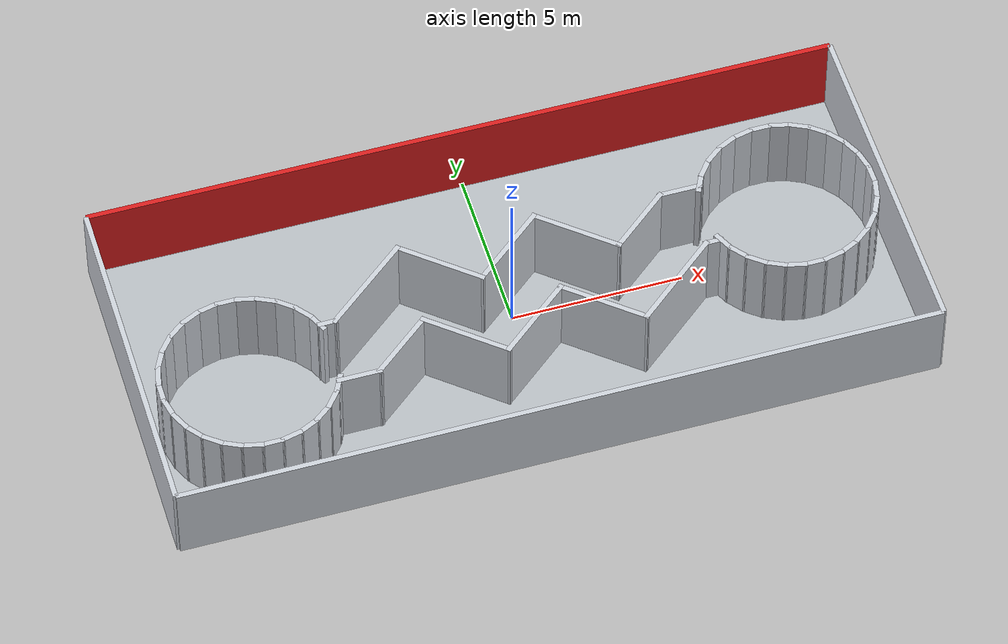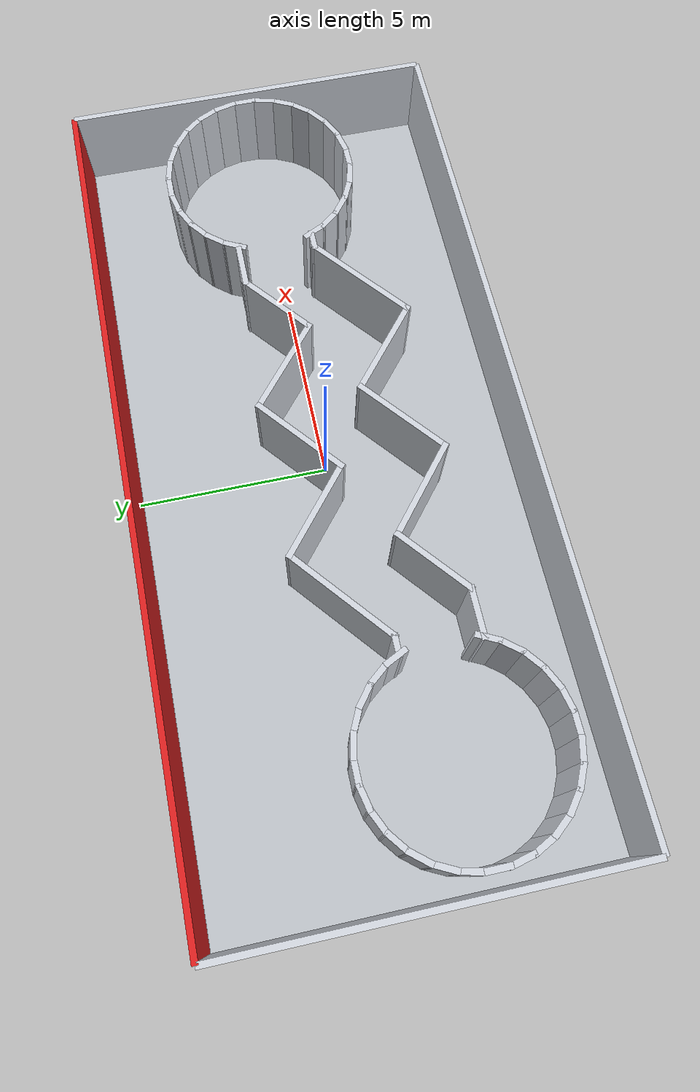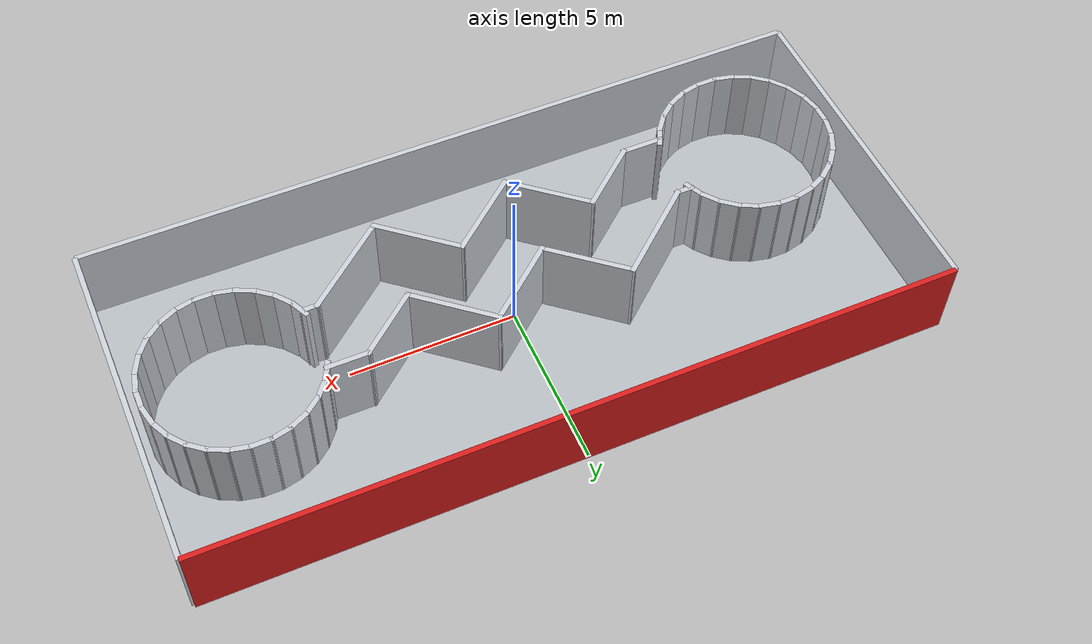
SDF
<sdf version="1.9">
 <world name="crashtest_zigzag">
  <physics name="1ms" type="ignored">
   <max_step_size>0.001</max_step_size>
   <real_time_factor>1.0</real_time_factor>
  </physics>
  <plugin filename="gz-sim-physics-system" name="gz::sim::systems::Physics"/>
  <plugin filename="gz-sim-scene-broadcaster-system" name="gz::sim::systems::SceneBroadcaster"/>
  <plugin filename="gz-sim-user-commands-system" name="gz::sim::systems::UserCommands"/>
  <plugin filename="gz-sim-sensors-system" name="gz::sim::systems::Sensors">
   <render_engine>ogre2</render_engine>
  </plugin>
  <plugin filename="gz-sim-imu-system" name="gz::sim::systems::Imu"/>
  <plugin filename="gz-sim-navsat-system" name="gz::sim::systems::NavSat"/>
  <spherical_coordinates>
   <latitude_deg>-35.363262</latitude_deg>
   <longitude_deg>149.165237</longitude_deg>
   <elevation>584.0</elevation>
   <heading_deg>0</heading_deg>
   <surface_model>EARTH_WGS84</surface_model>
  </spherical_coordinates>
  <light type="directional" name="main_light">
   <cast_shadows>false</cast_shadows>
   <pose>0 0 10 0 0 0</pose>
   <diffuse>1.0 1.0 1.0 1</diffuse>
   <specular>0.5 0.5 0.5 1</specular>
   <direction>0.1 0.1 -1</direction>
  </light>
  <model name="floor">
   <static>true</static>
   <link name="link">
    <collision name="c"><geometry><box><size>22.0 10.0 0.05</size></box></geometry></collision>
    <visual name="v">
     <geometry><box><size>22.0 10.0 0.05</size></box></geometry>
     <material>
      <ambient>0.72 0.74 0.76 1</ambient>
      <diffuse>0.72 0.74 0.76 1</diffuse>
      <specular>0.1 0.1 0.1 1</specular>
     </material>
    </visual>
   </link>
  </model>
  <model name="outer_south">
   <static>true</static>
   <pose>0.0000 -5.0000 1.250 0 0 0.00000</pose>
   <link name="link">
    <collision name="c"><geometry><box><size>22.0000 0.1500 2.500</size></box></geometry></collision>
    <visual name="v">
     <geometry><box><size>22.0000 0.1500 2.500</size></box></geometry>
     <material>
      <ambient>0.8 0.82 0.85 1</ambient>
      <diffuse>0.8 0.82 0.85 1</diffuse>
      <specular>0.1 0.1 0.1 1</specular>
     </material>
    </visual>
   </link>
  </model>
  <model name="outer_north">
   <static>true</static>
   <pose>0.0000 5.0000 1.250 0 0 0.00000</pose>
   <link name="link">
    <collision name="c"><geometry><box><size>22.0000 0.1500 2.500</size></box></geometry></collision>
    <visual name="v">
     <geometry><box><size>22.0000 0.1500 2.500</size></box></geometry>
     <material>
      <ambient>0.85 0.12 0.12 1</ambient>
      <diffuse>0.85 0.12 0.12 1</diffuse>
      <specular>0.1 0.1 0.1 1</specular>
     </material>
    </visual>
   </link>
  </model>
  <model name="outer_west">
   <static>true</static>
   <pose>-11.0000 0.0000 1.250 0 0 0.00000</pose>
   <link name="link">
    <collision name="c"><geometry><box><size>0.1500 10.0000 2.500</size></box></geometry></collision>
    <visual name="v">
     <geometry><box><size>0.1500 10.0000 2.500</size></box></geometry>
     <material>
      <ambient>0.8 0.82 0.85 1</ambient>
      <diffuse>0.8 0.82 0.85 1</diffuse>
      <specular>0.1 0.1 0.1 1</specular>
     </material>
    </visual>
   </link>
  </model>
  <model name="outer_east">
   <static>true</static>
   <pose>11.0000 0.0000 1.250 0 0 0.00000</pose>
   <link name="link">
    <collision name="c"><geometry><box><size>0.1500 10.0000 2.500</size></box></geometry></collision>
    <visual name="v">
     <geometry><box><size>0.1500 10.0000 2.500</size></box></geometry>
     <material>
      <ambient>0.8 0.82 0.85 1</ambient>
      <diffuse>0.8 0.82 0.85 1</diffuse>
      <specular>0.1 0.1 0.1 1</specular>
     </material>
    </visual>
   </link>
  </model>
  <model name="zz0_L">
   <static>true</static>
   <pose>-5.4907 -0.5000 1.250 0 0 0.00000</pose>
   <link name="link">
    <collision name="c"><geometry><box><size>0.5860 0.1500 2.500</size></box></geometry></collision>
    <visual name="v">
     <geometry><box><size>0.5860 0.1500 2.500</size></box></geometry>
     <material>
      <ambient>0.8 0.82 0.85 1</ambient>
      <diffuse>0.8 0.82 0.85 1</diffuse>
      <specular>0.1 0.1 0.1 1</specular>
     </material>
    </visual>
   </link>
  </model>
  <model name="zz1_L">
   <static>true</static>
   <pose>-4.0949 0.4883 1.250 0 0 0.69813</pose>
   <link name="link">
    <collision name="c"><geometry><box><size>3.2251 0.1500 2.500</size></box></geometry></collision>
    <visual name="v">
     <geometry><box><size>3.2251 0.1500 2.500</size></box></geometry>
     <material>
      <ambient>0.8 0.82 0.85 1</ambient>
      <diffuse>0.8 0.82 0.85 1</diffuse>
      <specular>0.1 0.1 0.1 1</specular>
     </material>
    </visual>
   </link>
  </model>
  <model name="zz2_L">
   <static>true</static>
   <pose>-1.9212 0.6410 1.250 0 0 -0.69813</pose>
   <link name="link">
    <collision name="c"><geometry><box><size>2.7500 0.1500 2.500</size></box></geometry></collision>
    <visual name="v">
     <geometry><box><size>2.7500 0.1500 2.500</size></box></geometry>
     <material>
      <ambient>0.8 0.82 0.85 1</ambient>
      <diffuse>0.8 0.82 0.85 1</diffuse>
      <specular>0.1 0.1 0.1 1</specular>
     </material>
    </visual>
   </link>
  </model>
  <model name="zz3_L">
   <static>true</static>
   <pose>0.0705 0.6410 1.250 0 0 0.69813</pose>
   <link name="link">
    <collision name="c"><geometry><box><size>2.7500 0.1500 2.500</size></box></geometry></collision>
    <visual name="v">
     <geometry><box><size>2.7500 0.1500 2.500</size></box></geometry>
     <material>
      <ambient>0.8 0.82 0.85 1</ambient>
      <diffuse>0.8 0.82 0.85 1</diffuse>
      <specular>0.1 0.1 0.1 1</specular>
     </material>
    </visual>
   </link>
  </model>
  <model name="zz4_L">
   <static>true</static>
   <pose>2.0623 0.6410 1.250 0 0 -0.69813</pose>
   <link name="link">
    <collision name="c"><geometry><box><size>2.7500 0.1500 2.500</size></box></geometry></collision>
    <visual name="v">
     <geometry><box><size>2.7500 0.1500 2.500</size></box></geometry>
     <material>
      <ambient>0.8 0.82 0.85 1</ambient>
      <diffuse>0.8 0.82 0.85 1</diffuse>
      <specular>0.1 0.1 0.1 1</specular>
     </material>
    </visual>
   </link>
  </model>
  <model name="zz5_L">
   <static>true</static>
   <pose>3.8720 0.4883 1.250 0 0 0.69813</pose>
   <link name="link">
    <collision name="c"><geometry><box><size>2.2749 0.1500 2.500</size></box></geometry></collision>
    <visual name="v">
     <geometry><box><size>2.2749 0.1500 2.500</size></box></geometry>
     <material>
      <ambient>0.8 0.82 0.85 1</ambient>
      <diffuse>0.8 0.82 0.85 1</diffuse>
      <specular>0.1 0.1 0.1 1</specular>
     </material>
    </visual>
   </link>
  </model>
  <model name="zz6_L">
   <static>true</static>
   <pose>5.2678 1.1712 1.250 0 0 0.00000</pose>
   <link name="link">
    <collision name="c"><geometry><box><size>1.3140 0.1500 2.500</size></box></geometry></collision>
    <visual name="v">
     <geometry><box><size>1.3140 0.1500 2.500</size></box></geometry>
     <material>
      <ambient>0.8 0.82 0.85 1</ambient>
      <diffuse>0.8 0.82 0.85 1</diffuse>
      <specular>0.1 0.1 0.1 1</specular>
     </material>
    </visual>
   </link>
  </model>
  <model name="zz0_R">
   <static>true</static>
   <pose>-5.1268 -2.5000 1.250 0 0 0.00000</pose>
   <link name="link">
    <collision name="c"><geometry><box><size>1.3140 0.1500 2.500</size></box></geometry></collision>
    <visual name="v">
     <geometry><box><size>1.3140 0.1500 2.500</size></box></geometry>
     <material>
      <ambient>0.8 0.82 0.85 1</ambient>
      <diffuse>0.8 0.82 0.85 1</diffuse>
      <specular>0.1 0.1 0.1 1</specular>
     </material>
    </visual>
   </link>
  </model>
  <model name="zz1_R">
   <static>true</static>
   <pose>-3.7309 -1.8171 1.250 0 0 0.69813</pose>
   <link name="link">
    <collision name="c"><geometry><box><size>2.2749 0.1500 2.500</size></box></geometry></collision>
    <visual name="v">
     <geometry><box><size>2.2749 0.1500 2.500</size></box></geometry>
     <material>
      <ambient>0.8 0.82 0.85 1</ambient>
      <diffuse>0.8 0.82 0.85 1</diffuse>
      <specular>0.1 0.1 0.1 1</specular>
     </material>
    </visual>
   </link>
  </model>
  <model name="zz2_R">
   <static>true</static>
   <pose>-1.9212 -1.9698 1.250 0 0 -0.69813</pose>
   <link name="link">
    <collision name="c"><geometry><box><size>2.7500 0.1500 2.500</size></box></geometry></collision>
    <visual name="v">
     <geometry><box><size>2.7500 0.1500 2.500</size></box></geometry>
     <material>
      <ambient>0.8 0.82 0.85 1</ambient>
      <diffuse>0.8 0.82 0.85 1</diffuse>
      <specular>0.1 0.1 0.1 1</specular>
     </material>
    </visual>
   </link>
  </model>
  <model name="zz3_R">
   <static>true</static>
   <pose>0.0705 -1.9698 1.250 0 0 0.69813</pose>
   <link name="link">
    <collision name="c"><geometry><box><size>2.7500 0.1500 2.500</size></box></geometry></collision>
    <visual name="v">
     <geometry><box><size>2.7500 0.1500 2.500</size></box></geometry>
     <material>
      <ambient>0.8 0.82 0.85 1</ambient>
      <diffuse>0.8 0.82 0.85 1</diffuse>
      <specular>0.1 0.1 0.1 1</specular>
     </material>
    </visual>
   </link>
  </model>
  <model name="zz4_R">
   <static>true</static>
   <pose>2.0623 -1.9698 1.250 0 0 -0.69813</pose>
   <link name="link">
    <collision name="c"><geometry><box><size>2.7500 0.1500 2.500</size></box></geometry></collision>
    <visual name="v">
     <geometry><box><size>2.7500 0.1500 2.500</size></box></geometry>
     <material>
      <ambient>0.8 0.82 0.85 1</ambient>
      <diffuse>0.8 0.82 0.85 1</diffuse>
      <specular>0.1 0.1 0.1 1</specular>
     </material>
    </visual>
   </link>
  </model>
  <model name="zz5_R">
   <static>true</static>
   <pose>4.2360 -1.8171 1.250 0 0 0.69813</pose>
   <link name="link">
    <collision name="c"><geometry><box><size>3.2251 0.1500 2.500</size></box></geometry></collision>
    <visual name="v">
     <geometry><box><size>3.2251 0.1500 2.500</size></box></geometry>
     <material>
      <ambient>0.8 0.82 0.85 1</ambient>
      <diffuse>0.8 0.82 0.85 1</diffuse>
      <specular>0.1 0.1 0.1 1</specular>
     </material>
    </visual>
   </link>
  </model>
  <model name="zz6_R">
   <static>true</static>
   <pose>5.6318 -0.8288 1.250 0 0 0.00000</pose>
   <link name="link">
    <collision name="c"><geometry><box><size>0.5860 0.1500 2.500</size></box></geometry></collision>
    <visual name="v">
     <geometry><box><size>0.5860 0.1500 2.500</size></box></geometry>
     <material>
      <ambient>0.8 0.82 0.85 1</ambient>
      <diffuse>0.8 0.82 0.85 1</diffuse>
      <specular>0.1 0.1 0.1 1</specular>
     </material>
    </visual>
   </link>
  </model>
  <model name="roomA_s2">
   <static>true</static>
   <pose>-5.7476 -0.4153 1.250 0 0 0.44880</pose>
   <link name="link">
    <collision name="c"><geometry><box><size>0.1500 0.6451 2.500</size></box></geometry></collision>
    <visual name="v">
     <geometry><box><size>0.1500 0.6451 2.500</size></box></geometry>
     <material>
      <ambient>0.8 0.82 0.85 1</ambient>
      <diffuse>0.8 0.82 0.85 1</diffuse>
      <specular>0.1 0.1 0.1 1</specular>
     </material>
    </visual>
   </link>
  </model>
  <model name="roomA_s3">
   <static>true</static>
   <pose>-6.0454 0.0587 1.250 0 0 0.67320</pose>
   <link name="link">
    <collision name="c"><geometry><box><size>0.1500 0.6451 2.500</size></box></geometry></collision>
    <visual name="v">
     <geometry><box><size>0.1500 0.6451 2.500</size></box></geometry>
     <material>
      <ambient>0.8 0.82 0.85 1</ambient>
      <diffuse>0.8 0.82 0.85 1</diffuse>
      <specular>0.1 0.1 0.1 1</specular>
     </material>
    </visual>
   </link>
  </model>
  <model name="roomA_s4">
   <static>true</static>
   <pose>-6.4413 0.4546 1.250 0 0 0.89760</pose>
   <link name="link">
    <collision name="c"><geometry><box><size>0.1500 0.6451 2.500</size></box></geometry></collision>
    <visual name="v">
     <geometry><box><size>0.1500 0.6451 2.500</size></box></geometry>
     <material>
      <ambient>0.8 0.82 0.85 1</ambient>
      <diffuse>0.8 0.82 0.85 1</diffuse>
      <specular>0.1 0.1 0.1 1</specular>
     </material>
    </visual>
   </link>
  </model>
  <model name="roomA_s5">
   <static>true</static>
   <pose>-6.9153 0.7524 1.250 0 0 1.12200</pose>
   <link name="link">
    <collision name="c"><geometry><box><size>0.1500 0.6451 2.500</size></box></geometry></collision>
    <visual name="v">
     <geometry><box><size>0.1500 0.6451 2.500</size></box></geometry>
     <material>
      <ambient>0.8 0.82 0.85 1</ambient>
      <diffuse>0.8 0.82 0.85 1</diffuse>
      <specular>0.1 0.1 0.1 1</specular>
     </material>
    </visual>
   </link>
  </model>
  <model name="roomA_s6">
   <static>true</static>
   <pose>-7.4437 0.9373 1.250 0 0 1.34640</pose>
   <link name="link">
    <collision name="c"><geometry><box><size>0.1500 0.6451 2.500</size></box></geometry></collision>
    <visual name="v">
     <geometry><box><size>0.1500 0.6451 2.500</size></box></geometry>
     <material>
      <ambient>0.8 0.82 0.85 1</ambient>
      <diffuse>0.8 0.82 0.85 1</diffuse>
      <specular>0.1 0.1 0.1 1</specular>
     </material>
    </visual>
   </link>
  </model>
  <model name="roomA_s7">
   <static>true</static>
   <pose>-8.0000 1.0000 1.250 0 0 1.57080</pose>
   <link name="link">
    <collision name="c"><geometry><box><size>0.1500 0.6451 2.500</size></box></geometry></collision>
    <visual name="v">
     <geometry><box><size>0.1500 0.6451 2.500</size></box></geometry>
     <material>
      <ambient>0.8 0.82 0.85 1</ambient>
      <diffuse>0.8 0.82 0.85 1</diffuse>
      <specular>0.1 0.1 0.1 1</specular>
     </material>
    </visual>
   </link>
  </model>
  <model name="roomA_s8">
   <static>true</static>
   <pose>-8.5563 0.9373 1.250 0 0 1.79520</pose>
   <link name="link">
    <collision name="c"><geometry><box><size>0.1500 0.6451 2.500</size></box></geometry></collision>
    <visual name="v">
     <geometry><box><size>0.1500 0.6451 2.500</size></box></geometry>
     <material>
      <ambient>0.8 0.82 0.85 1</ambient>
      <diffuse>0.8 0.82 0.85 1</diffuse>
      <specular>0.1 0.1 0.1 1</specular>
     </material>
    </visual>
   </link>
  </model>
  <model name="roomA_s9">
   <static>true</static>
   <pose>-9.0847 0.7524 1.250 0 0 2.01960</pose>
   <link name="link">
    <collision name="c"><geometry><box><size>0.1500 0.6451 2.500</size></box></geometry></collision>
    <visual name="v">
     <geometry><box><size>0.1500 0.6451 2.500</size></box></geometry>
     <material>
      <ambient>0.8 0.82 0.85 1</ambient>
      <diffuse>0.8 0.82 0.85 1</diffuse>
      <specular>0.1 0.1 0.1 1</specular>
     </material>
    </visual>
   </link>
  </model>
  <model name="roomA_s10">
   <static>true</static>
   <pose>-9.5587 0.4546 1.250 0 0 2.24399</pose>
   <link name="link">
    <collision name="c"><geometry><box><size>0.1500 0.6451 2.500</size></box></geometry></collision>
    <visual name="v">
     <geometry><box><size>0.1500 0.6451 2.500</size></box></geometry>
     <material>
      <ambient>0.8 0.82 0.85 1</ambient>
      <diffuse>0.8 0.82 0.85 1</diffuse>
      <specular>0.1 0.1 0.1 1</specular>
     </material>
    </visual>
   </link>
  </model>
  <model name="roomA_s11">
   <static>true</static>
   <pose>-9.9546 0.0587 1.250 0 0 2.46839</pose>
   <link name="link">
    <collision name="c"><geometry><box><size>0.1500 0.6451 2.500</size></box></geometry></collision>
    <visual name="v">
     <geometry><box><size>0.1500 0.6451 2.500</size></box></geometry>
     <material>
      <ambient>0.8 0.82 0.85 1</ambient>
      <diffuse>0.8 0.82 0.85 1</diffuse>
      <specular>0.1 0.1 0.1 1</specular>
     </material>
    </visual>
   </link>
  </model>
  <model name="roomA_s12">
   <static>true</static>
   <pose>-10.2524 -0.4153 1.250 0 0 2.69279</pose>
   <link name="link">
    <collision name="c"><geometry><box><size>0.1500 0.6451 2.500</size></box></geometry></collision>
    <visual name="v">
     <geometry><box><size>0.1500 0.6451 2.500</size></box></geometry>
     <material>
      <ambient>0.8 0.82 0.85 1</ambient>
      <diffuse>0.8 0.82 0.85 1</diffuse>
      <specular>0.1 0.1 0.1 1</specular>
     </material>
    </visual>
   </link>
  </model>
  <model name="roomA_s13">
   <static>true</static>
   <pose>-10.4373 -0.9437 1.250 0 0 2.91719</pose>
   <link name="link">
    <collision name="c"><geometry><box><size>0.1500 0.6451 2.500</size></box></geometry></collision>
    <visual name="v">
     <geometry><box><size>0.1500 0.6451 2.500</size></box></geometry>
     <material>
      <ambient>0.8 0.82 0.85 1</ambient>
      <diffuse>0.8 0.82 0.85 1</diffuse>
      <specular>0.1 0.1 0.1 1</specular>
     </material>
    </visual>
   </link>
  </model>
  <model name="roomA_s14">
   <static>true</static>
   <pose>-10.5000 -1.5000 1.250 0 0 3.14159</pose>
   <link name="link">
    <collision name="c"><geometry><box><size>0.1500 0.6451 2.500</size></box></geometry></collision>
    <visual name="v">
     <geometry><box><size>0.1500 0.6451 2.500</size></box></geometry>
     <material>
      <ambient>0.8 0.82 0.85 1</ambient>
      <diffuse>0.8 0.82 0.85 1</diffuse>
      <specular>0.1 0.1 0.1 1</specular>
     </material>
    </visual>
   </link>
  </model>
  <model name="roomA_s15">
   <static>true</static>
   <pose>-10.4373 -2.0563 1.250 0 0 3.36599</pose>
   <link name="link">
    <collision name="c"><geometry><box><size>0.1500 0.6451 2.500</size></box></geometry></collision>
    <visual name="v">
     <geometry><box><size>0.1500 0.6451 2.500</size></box></geometry>
     <material>
      <ambient>0.8 0.82 0.85 1</ambient>
      <diffuse>0.8 0.82 0.85 1</diffuse>
      <specular>0.1 0.1 0.1 1</specular>
     </material>
    </visual>
   </link>
  </model>
  <model name="roomA_s16">
   <static>true</static>
   <pose>-10.2524 -2.5847 1.250 0 0 3.59039</pose>
   <link name="link">
    <collision name="c"><geometry><box><size>0.1500 0.6451 2.500</size></box></geometry></collision>
    <visual name="v">
     <geometry><box><size>0.1500 0.6451 2.500</size></box></geometry>
     <material>
      <ambient>0.8 0.82 0.85 1</ambient>
      <diffuse>0.8 0.82 0.85 1</diffuse>
      <specular>0.1 0.1 0.1 1</specular>
     </material>
    </visual>
   </link>
  </model>
  <model name="roomA_s17">
   <static>true</static>
   <pose>-9.9546 -3.0587 1.250 0 0 3.81479</pose>
   <link name="link">
    <collision name="c"><geometry><box><size>0.1500 0.6451 2.500</size></box></geometry></collision>
    <visual name="v">
     <geometry><box><size>0.1500 0.6451 2.500</size></box></geometry>
     <material>
      <ambient>0.8 0.82 0.85 1</ambient>
      <diffuse>0.8 0.82 0.85 1</diffuse>
      <specular>0.1 0.1 0.1 1</specular>
     </material>
    </visual>
   </link>
  </model>
  <model name="roomA_s18">
   <static>true</static>
   <pose>-9.5587 -3.4546 1.250 0 0 4.03919</pose>
   <link name="link">
    <collision name="c"><geometry><box><size>0.1500 0.6451 2.500</size></box></geometry></collision>
    <visual name="v">
     <geometry><box><size>0.1500 0.6451 2.500</size></box></geometry>
     <material>
      <ambient>0.8 0.82 0.85 1</ambient>
      <diffuse>0.8 0.82 0.85 1</diffuse>
      <specular>0.1 0.1 0.1 1</specular>
     </material>
    </visual>
   </link>
  </model>
  <model name="roomA_s19">
   <static>true</static>
   <pose>-9.0847 -3.7524 1.250 0 0 4.26359</pose>
   <link name="link">
    <collision name="c"><geometry><box><size>0.1500 0.6451 2.500</size></box></geometry></collision>
    <visual name="v">
     <geometry><box><size>0.1500 0.6451 2.500</size></box></geometry>
     <material>
      <ambient>0.8 0.82 0.85 1</ambient>
      <diffuse>0.8 0.82 0.85 1</diffuse>
      <specular>0.1 0.1 0.1 1</specular>
     </material>
    </visual>
   </link>
  </model>
  <model name="roomA_s20">
   <static>true</static>
   <pose>-8.5563 -3.9373 1.250 0 0 4.48799</pose>
   <link name="link">
    <collision name="c"><geometry><box><size>0.1500 0.6451 2.500</size></box></geometry></collision>
    <visual name="v">
     <geometry><box><size>0.1500 0.6451 2.500</size></box></geometry>
     <material>
      <ambient>0.8 0.82 0.85 1</ambient>
      <diffuse>0.8 0.82 0.85 1</diffuse>
      <specular>0.1 0.1 0.1 1</specular>
     </material>
    </visual>
   </link>
  </model>
  <model name="roomA_s21">
   <static>true</static>
   <pose>-8.0000 -4.0000 1.250 0 0 4.71239</pose>
   <link name="link">
    <collision name="c"><geometry><box><size>0.1500 0.6451 2.500</size></box></geometry></collision>
    <visual name="v">
     <geometry><box><size>0.1500 0.6451 2.500</size></box></geometry>
     <material>
      <ambient>0.8 0.82 0.85 1</ambient>
      <diffuse>0.8 0.82 0.85 1</diffuse>
      <specular>0.1 0.1 0.1 1</specular>
     </material>
    </visual>
   </link>
  </model>
  <model name="roomA_s22">
   <static>true</static>
   <pose>-7.4437 -3.9373 1.250 0 0 4.93679</pose>
   <link name="link">
    <collision name="c"><geometry><box><size>0.1500 0.6451 2.500</size></box></geometry></collision>
    <visual name="v">
     <geometry><box><size>0.1500 0.6451 2.500</size></box></geometry>
     <material>
      <ambient>0.8 0.82 0.85 1</ambient>
      <diffuse>0.8 0.82 0.85 1</diffuse>
      <specular>0.1 0.1 0.1 1</specular>
     </material>
    </visual>
   </link>
  </model>
  <model name="roomA_s23">
   <static>true</static>
   <pose>-6.9153 -3.7524 1.250 0 0 5.16119</pose>
   <link name="link">
    <collision name="c"><geometry><box><size>0.1500 0.6451 2.500</size></box></geometry></collision>
    <visual name="v">
     <geometry><box><size>0.1500 0.6451 2.500</size></box></geometry>
     <material>
      <ambient>0.8 0.82 0.85 1</ambient>
      <diffuse>0.8 0.82 0.85 1</diffuse>
      <specular>0.1 0.1 0.1 1</specular>
     </material>
    </visual>
   </link>
  </model>
  <model name="roomA_s24">
   <static>true</static>
   <pose>-6.4413 -3.4546 1.250 0 0 5.38559</pose>
   <link name="link">
    <collision name="c"><geometry><box><size>0.1500 0.6451 2.500</size></box></geometry></collision>
    <visual name="v">
     <geometry><box><size>0.1500 0.6451 2.500</size></box></geometry>
     <material>
      <ambient>0.8 0.82 0.85 1</ambient>
      <diffuse>0.8 0.82 0.85 1</diffuse>
      <specular>0.1 0.1 0.1 1</specular>
     </material>
    </visual>
   </link>
  </model>
  <model name="roomA_s25">
   <static>true</static>
   <pose>-6.0454 -3.0587 1.250 0 0 5.60999</pose>
   <link name="link">
    <collision name="c"><geometry><box><size>0.1500 0.6451 2.500</size></box></geometry></collision>
    <visual name="v">
     <geometry><box><size>0.1500 0.6451 2.500</size></box></geometry>
     <material>
      <ambient>0.8 0.82 0.85 1</ambient>
      <diffuse>0.8 0.82 0.85 1</diffuse>
      <specular>0.1 0.1 0.1 1</specular>
     </material>
    </visual>
   </link>
  </model>
  <model name="roomA_s26">
   <static>true</static>
   <pose>-5.7476 -2.5847 1.250 0 0 5.83439</pose>
   <link name="link">
    <collision name="c"><geometry><box><size>0.1500 0.6451 2.500</size></box></geometry></collision>
    <visual name="v">
     <geometry><box><size>0.1500 0.6451 2.500</size></box></geometry>
     <material>
      <ambient>0.8 0.82 0.85 1</ambient>
      <diffuse>0.8 0.82 0.85 1</diffuse>
      <specular>0.1 0.1 0.1 1</specular>
     </material>
    </visual>
   </link>
  </model>
  <model name="roomB_s0">
   <static>true</static>
   <pose>10.6411 0.1712 1.250 0 0 0.00000</pose>
   <link name="link">
    <collision name="c"><geometry><box><size>0.1500 0.6451 2.500</size></box></geometry></collision>
    <visual name="v">
     <geometry><box><size>0.1500 0.6451 2.500</size></box></geometry>
     <material>
      <ambient>0.8 0.82 0.85 1</ambient>
      <diffuse>0.8 0.82 0.85 1</diffuse>
      <specular>0.1 0.1 0.1 1</specular>
     </material>
    </visual>
   </link>
  </model>
  <model name="roomB_s1">
   <static>true</static>
   <pose>10.5784 0.7276 1.250 0 0 0.22440</pose>
   <link name="link">
    <collision name="c"><geometry><box><size>0.1500 0.6451 2.500</size></box></geometry></collision>
    <visual name="v">
     <geometry><box><size>0.1500 0.6451 2.500</size></box></geometry>
     <material>
      <ambient>0.8 0.82 0.85 1</ambient>
      <diffuse>0.8 0.82 0.85 1</diffuse>
      <specular>0.1 0.1 0.1 1</specular>
     </material>
    </visual>
   </link>
  </model>
  <model name="roomB_s2">
   <static>true</static>
   <pose>10.3935 1.2560 1.250 0 0 0.44880</pose>
   <link name="link">
    <collision name="c"><geometry><box><size>0.1500 0.6451 2.500</size></box></geometry></collision>
    <visual name="v">
     <geometry><box><size>0.1500 0.6451 2.500</size></box></geometry>
     <material>
      <ambient>0.8 0.82 0.85 1</ambient>
      <diffuse>0.8 0.82 0.85 1</diffuse>
      <specular>0.1 0.1 0.1 1</specular>
     </material>
    </visual>
   </link>
  </model>
  <model name="roomB_s3">
   <static>true</static>
   <pose>10.0957 1.7300 1.250 0 0 0.67320</pose>
   <link name="link">
    <collision name="c"><geometry><box><size>0.1500 0.6451 2.500</size></box></geometry></collision>
    <visual name="v">
     <geometry><box><size>0.1500 0.6451 2.500</size></box></geometry>
     <material>
      <ambient>0.8 0.82 0.85 1</ambient>
      <diffuse>0.8 0.82 0.85 1</diffuse>
      <specular>0.1 0.1 0.1 1</specular>
     </material>
    </visual>
   </link>
  </model>
  <model name="roomB_s4">
   <static>true</static>
   <pose>9.6998 2.1258 1.250 0 0 0.89760</pose>
   <link name="link">
    <collision name="c"><geometry><box><size>0.1500 0.6451 2.500</size></box></geometry></collision>
    <visual name="v">
     <geometry><box><size>0.1500 0.6451 2.500</size></box></geometry>
     <material>
      <ambient>0.8 0.82 0.85 1</ambient>
      <diffuse>0.8 0.82 0.85 1</diffuse>
      <specular>0.1 0.1 0.1 1</specular>
     </material>
    </visual>
   </link>
  </model>
  <model name="roomB_s5">
   <static>true</static>
   <pose>9.2258 2.4237 1.250 0 0 1.12200</pose>
   <link name="link">
    <collision name="c"><geometry><box><size>0.1500 0.6451 2.500</size></box></geometry></collision>
    <visual name="v">
     <geometry><box><size>0.1500 0.6451 2.500</size></box></geometry>
     <material>
      <ambient>0.8 0.82 0.85 1</ambient>
      <diffuse>0.8 0.82 0.85 1</diffuse>
      <specular>0.1 0.1 0.1 1</specular>
     </material>
    </visual>
   </link>
  </model>
  <model name="roomB_s6">
   <static>true</static>
   <pose>8.6974 2.6086 1.250 0 0 1.34640</pose>
   <link name="link">
    <collision name="c"><geometry><box><size>0.1500 0.6451 2.500</size></box></geometry></collision>
    <visual name="v">
     <geometry><box><size>0.1500 0.6451 2.500</size></box></geometry>
     <material>
      <ambient>0.8 0.82 0.85 1</ambient>
      <diffuse>0.8 0.82 0.85 1</diffuse>
      <specular>0.1 0.1 0.1 1</specular>
     </material>
    </visual>
   </link>
  </model>
  <model name="roomB_s7">
   <static>true</static>
   <pose>8.1411 2.6712 1.250 0 0 1.57080</pose>
   <link name="link">
    <collision name="c"><geometry><box><size>0.1500 0.6451 2.500</size></box></geometry></collision>
    <visual name="v">
     <geometry><box><size>0.1500 0.6451 2.500</size></box></geometry>
     <material>
      <ambient>0.8 0.82 0.85 1</ambient>
      <diffuse>0.8 0.82 0.85 1</diffuse>
      <specular>0.1 0.1 0.1 1</specular>
     </material>
    </visual>
   </link>
  </model>
  <model name="roomB_s8">
   <static>true</static>
   <pose>7.5848 2.6086 1.250 0 0 1.79520</pose>
   <link name="link">
    <collision name="c"><geometry><box><size>0.1500 0.6451 2.500</size></box></geometry></collision>
    <visual name="v">
     <geometry><box><size>0.1500 0.6451 2.500</size></box></geometry>
     <material>
      <ambient>0.8 0.82 0.85 1</ambient>
      <diffuse>0.8 0.82 0.85 1</diffuse>
      <specular>0.1 0.1 0.1 1</specular>
     </material>
    </visual>
   </link>
  </model>
  <model name="roomB_s9">
   <static>true</static>
   <pose>7.0564 2.4237 1.250 0 0 2.01960</pose>
   <link name="link">
    <collision name="c"><geometry><box><size>0.1500 0.6451 2.500</size></box></geometry></collision>
    <visual name="v">
     <geometry><box><size>0.1500 0.6451 2.500</size></box></geometry>
     <material>
      <ambient>0.8 0.82 0.85 1</ambient>
      <diffuse>0.8 0.82 0.85 1</diffuse>
      <specular>0.1 0.1 0.1 1</specular>
     </material>
    </visual>
   </link>
  </model>
  <model name="roomB_s10">
   <static>true</static>
   <pose>6.5824 2.1258 1.250 0 0 2.24399</pose>
   <link name="link">
    <collision name="c"><geometry><box><size>0.1500 0.6451 2.500</size></box></geometry></collision>
    <visual name="v">
     <geometry><box><size>0.1500 0.6451 2.500</size></box></geometry>
     <material>
      <ambient>0.8 0.82 0.85 1</ambient>
      <diffuse>0.8 0.82 0.85 1</diffuse>
      <specular>0.1 0.1 0.1 1</specular>
     </material>
    </visual>
   </link>
  </model>
  <model name="roomB_s11">
   <static>true</static>
   <pose>6.1865 1.7300 1.250 0 0 2.46839</pose>
   <link name="link">
    <collision name="c"><geometry><box><size>0.1500 0.6451 2.500</size></box></geometry></collision>
    <visual name="v">
     <geometry><box><size>0.1500 0.6451 2.500</size></box></geometry>
     <material>
      <ambient>0.8 0.82 0.85 1</ambient>
      <diffuse>0.8 0.82 0.85 1</diffuse>
      <specular>0.1 0.1 0.1 1</specular>
     </material>
    </visual>
   </link>
  </model>
  <model name="roomB_s12">
   <static>true</static>
   <pose>5.8887 1.2560 1.250 0 0 2.69279</pose>
   <link name="link">
    <collision name="c"><geometry><box><size>0.1500 0.6451 2.500</size></box></geometry></collision>
    <visual name="v">
     <geometry><box><size>0.1500 0.6451 2.500</size></box></geometry>
     <material>
      <ambient>0.8 0.82 0.85 1</ambient>
      <diffuse>0.8 0.82 0.85 1</diffuse>
      <specular>0.1 0.1 0.1 1</specular>
     </material>
    </visual>
   </link>
  </model>
  <model name="roomB_s16">
   <static>true</static>
   <pose>5.8887 -0.9135 1.250 0 0 3.59039</pose>
   <link name="link">
    <collision name="c"><geometry><box><size>0.1500 0.6451 2.500</size></box></geometry></collision>
    <visual name="v">
     <geometry><box><size>0.1500 0.6451 2.500</size></box></geometry>
     <material>
      <ambient>0.8 0.82 0.85 1</ambient>
      <diffuse>0.8 0.82 0.85 1</diffuse>
      <specular>0.1 0.1 0.1 1</specular>
     </material>
    </visual>
   </link>
  </model>
  <model name="roomB_s17">
   <static>true</static>
   <pose>6.1865 -1.3875 1.250 0 0 3.81479</pose>
   <link name="link">
    <collision name="c"><geometry><box><size>0.1500 0.6451 2.500</size></box></geometry></collision>
    <visual name="v">
     <geometry><box><size>0.1500 0.6451 2.500</size></box></geometry>
     <material>
      <ambient>0.8 0.82 0.85 1</ambient>
      <diffuse>0.8 0.82 0.85 1</diffuse>
      <specular>0.1 0.1 0.1 1</specular>
     </material>
    </visual>
   </link>
  </model>
  <model name="roomB_s18">
   <static>true</static>
   <pose>6.5824 -1.7833 1.250 0 0 4.03919</pose>
   <link name="link">
    <collision name="c"><geometry><box><size>0.1500 0.6451 2.500</size></box></geometry></collision>
    <visual name="v">
     <geometry><box><size>0.1500 0.6451 2.500</size></box></geometry>
     <material>
      <ambient>0.8 0.82 0.85 1</ambient>
      <diffuse>0.8 0.82 0.85 1</diffuse>
      <specular>0.1 0.1 0.1 1</specular>
     </material>
    </visual>
   </link>
  </model>
  <model name="roomB_s19">
   <static>true</static>
   <pose>7.0564 -2.0812 1.250 0 0 4.26359</pose>
   <link name="link">
    <collision name="c"><geometry><box><size>0.1500 0.6451 2.500</size></box></geometry></collision>
    <visual name="v">
     <geometry><box><size>0.1500 0.6451 2.500</size></box></geometry>
     <material>
      <ambient>0.8 0.82 0.85 1</ambient>
      <diffuse>0.8 0.82 0.85 1</diffuse>
      <specular>0.1 0.1 0.1 1</specular>
     </material>
    </visual>
   </link>
  </model>
  <model name="roomB_s20">
   <static>true</static>
   <pose>7.5848 -2.2661 1.250 0 0 4.48799</pose>
   <link name="link">
    <collision name="c"><geometry><box><size>0.1500 0.6451 2.500</size></box></geometry></collision>
    <visual name="v">
     <geometry><box><size>0.1500 0.6451 2.500</size></box></geometry>
     <material>
      <ambient>0.8 0.82 0.85 1</ambient>
      <diffuse>0.8 0.82 0.85 1</diffuse>
      <specular>0.1 0.1 0.1 1</specular>
     </material>
    </visual>
   </link>
  </model>
  <model name="roomB_s21">
   <static>true</static>
   <pose>8.1411 -2.3288 1.250 0 0 4.71239</pose>
   <link name="link">
    <collision name="c"><geometry><box><size>0.1500 0.6451 2.500</size></box></geometry></collision>
    <visual name="v">
     <geometry><box><size>0.1500 0.6451 2.500</size></box></geometry>
     <material>
      <ambient>0.8 0.82 0.85 1</ambient>
      <diffuse>0.8 0.82 0.85 1</diffuse>
      <specular>0.1 0.1 0.1 1</specular>
     </material>
    </visual>
   </link>
  </model>
  <model name="roomB_s22">
   <static>true</static>
   <pose>8.6974 -2.2661 1.250 0 0 4.93679</pose>
   <link name="link">
    <collision name="c"><geometry><box><size>0.1500 0.6451 2.500</size></box></geometry></collision>
    <visual name="v">
     <geometry><box><size>0.1500 0.6451 2.500</size></box></geometry>
     <material>
      <ambient>0.8 0.82 0.85 1</ambient>
      <diffuse>0.8 0.82 0.85 1</diffuse>
      <specular>0.1 0.1 0.1 1</specular>
     </material>
    </visual>
   </link>
  </model>
  <model name="roomB_s23">
   <static>true</static>
   <pose>9.2258 -2.0812 1.250 0 0 5.16119</pose>
   <link name="link">
    <collision name="c"><geometry><box><size>0.1500 0.6451 2.500</size></box></geometry></collision>
    <visual name="v">
     <geometry><box><size>0.1500 0.6451 2.500</size></box></geometry>
     <material>
      <ambient>0.8 0.82 0.85 1</ambient>
      <diffuse>0.8 0.82 0.85 1</diffuse>
      <specular>0.1 0.1 0.1 1</specular>
     </material>
    </visual>
   </link>
  </model>
  <model name="roomB_s24">
   <static>true</static>
   <pose>9.6998 -1.7833 1.250 0 0 5.38559</pose>
   <link name="link">
    <collision name="c"><geometry><box><size>0.1500 0.6451 2.500</size></box></geometry></collision>
    <visual name="v">
     <geometry><box><size>0.1500 0.6451 2.500</size></box></geometry>
     <material>
      <ambient>0.8 0.82 0.85 1</ambient>
      <diffuse>0.8 0.82 0.85 1</diffuse>
      <specular>0.1 0.1 0.1 1</specular>
     </material>
    </visual>
   </link>
  </model>
  <model name="roomB_s25">
   <static>true</static>
   <pose>10.0957 -1.3875 1.250 0 0 5.60999</pose>
   <link name="link">
    <collision name="c"><geometry><box><size>0.1500 0.6451 2.500</size></box></geometry></collision>
    <visual name="v">
     <geometry><box><size>0.1500 0.6451 2.500</size></box></geometry>
     <material>
      <ambient>0.8 0.82 0.85 1</ambient>
      <diffuse>0.8 0.82 0.85 1</diffuse>
      <specular>0.1 0.1 0.1 1</specular>
     </material>
    </visual>
   </link>
  </model>
  <model name="roomB_s26">
   <static>true</static>
   <pose>10.3935 -0.9135 1.250 0 0 5.83439</pose>
   <link name="link">
    <collision name="c"><geometry><box><size>0.1500 0.6451 2.500</size></box></geometry></collision>
    <visual name="v">
     <geometry><box><size>0.1500 0.6451 2.500</size></box></geometry>
     <material>
      <ambient>0.8 0.82 0.85 1</ambient>
      <diffuse>0.8 0.82 0.85 1</diffuse>
      <specular>0.1 0.1 0.1 1</specular>
     </material>
    </visual>
   </link>
  </model>
  <model name="roomB_s27">
   <static>true</static>
   <pose>10.5784 -0.3851 1.250 0 0 6.05879</pose>
   <link name="link">
    <collision name="c"><geometry><box><size>0.1500 0.6451 2.500</size></box></geometry></collision>
    <visual name="v">
     <geometry><box><size>0.1500 0.6451 2.500</size></box></geometry>
     <material>
      <ambient>0.8 0.82 0.85 1</ambient>
      <diffuse>0.8 0.82 0.85 1</diffuse>
      <specular>0.1 0.1 0.1 1</specular>
     </material>
    </visual>
   </link>
  </model>
 </world>
</sdf>
